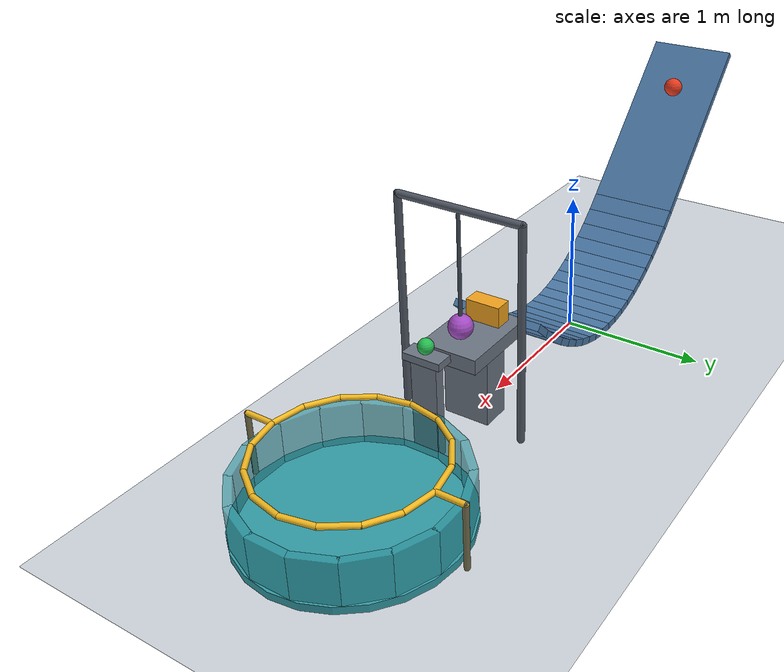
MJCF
<mujoco model="halfpipe_chain_reaction">
  <compiler angle="degree" autolimits="true"/>
  <option timestep="0.002" gravity="0 0 -9.81" integrator="implicitfast" solver="Newton" iterations="100" tolerance="1e-10"/>
  <size njmax="2000" nconmax="400"/>
  <visual>
    <headlight ambient="0.45 0.45 0.45" diffuse="0.7 0.7 0.7" specular="0.2 0.2 0.2"/>
    <rgba haze="0.85 0.9 0.95 1"/>
  </visual>

  <worldbody>
    <light name="key_light" pos="0 -3 6" dir="0 0.3 -1" directional="true"/>
    <camera name="overview" pos="4 -7 4" xyaxes="0.868 0.496 0 -0.205 0.358 0.911"/>

    <geom name="floor" type="plane" pos="0 0 0" size="8 5 0.1" friction="0.8 0.01 0.001" rgba="0.82 0.85 0.88 1"/>

    <!-- The ramp's lower endpoint is (-1, 0, 0.6).
         Ball1 starts exactly 1 m along its slope above that endpoint,
         with its center displaced one radius along the surface normal. -->
    <body name="ramp">
      <geom name="ramp_surface" type="box" pos="-1.517678 0 1.082322" euler="0 45 0" size="0.7082 0.32 0.025" friction="0.7 0.002 0.00005" condim="6" priority="1" solref="0.006 1" rgba="0.30 0.48 0.66 1"/>
    </body>

    <!-- Twenty tangent-aligned slabs approximate z = 0.1 + 0.5*x*x.
         Their upper faces form the continuous U-shaped halfpipe. -->
    <body name="halfpipe">
      <geom name="halfpipe_01" type="box" pos="-0.967219 0 0.534375" euler="0 43.531 0" size="0.069965 0.32 0.025" friction="0.7 0.002 0.00005" condim="6" priority="1" solref="0.006 1" rgba="0.30 0.48 0.66 1"/>
      <geom name="halfpipe_02" type="box" pos="-0.866192 0 0.443452" euler="0 40.365 0" size="0.066622 0.32 0.025" friction="0.7 0.002 0.00005" condim="6" priority="1" solref="0.006 1" rgba="0.30 0.48 0.66 1"/>
      <geom name="halfpipe_03" type="box" pos="-0.765000 0 0.362500" euler="0 36.870 0" size="0.063500 0.32 0.025" friction="0.7 0.002 0.00005" condim="6" priority="1" solref="0.006 1" rgba="0.30 0.48 0.66 1"/>
      <geom name="halfpipe_04" type="box" pos="-0.663625 0 0.291539" euler="0 33.024 0" size="0.060634 0.32 0.025" friction="0.7 0.002 0.00005" condim="6" priority="1" solref="0.006 1" rgba="0.30 0.48 0.66 1"/>
      <geom name="halfpipe_05" type="box" pos="-0.562048 0 0.230595" euler="0 28.811 0" size="0.058064 0.32 0.025" friction="0.7 0.002 0.00005" condim="6" priority="1" solref="0.006 1" rgba="0.30 0.48 0.66 1"/>
      <geom name="halfpipe_06" type="box" pos="-0.460259 0 0.179702" euler="0 24.228 0" size="0.055829 0.32 0.025" friction="0.7 0.002 0.00005" condim="6" priority="1" solref="0.006 1" rgba="0.30 0.48 0.66 1"/>
      <geom name="halfpipe_07" type="box" pos="-0.358259 0 0.138904" euler="0 19.290 0" size="0.053974 0.32 0.025" friction="0.7 0.002 0.00005" condim="6" priority="1" solref="0.006 1" rgba="0.30 0.48 0.66 1"/>
      <geom name="halfpipe_08" type="box" pos="-0.256063 0 0.108246" euler="0 14.036 0" size="0.052539 0.32 0.025" friction="0.7 0.002 0.00005" condim="6" priority="1" solref="0.006 1" rgba="0.30 0.48 0.66 1"/>
      <geom name="halfpipe_09" type="box" pos="-0.153709 0 0.087777" euler="0 8.531 0" size="0.051559 0.32 0.025" friction="0.7 0.002 0.00005" condim="6" priority="1" solref="0.006 1" rgba="0.30 0.48 0.66 1"/>
      <geom name="halfpipe_10" type="box" pos="-0.051248 0 0.077531" euler="0 2.862 0" size="0.051062 0.32 0.025" friction="0.7 0.002 0.00005" condim="6" priority="1" solref="0.006 1" rgba="0.30 0.48 0.66 1"/>
      <geom name="halfpipe_11" type="box" pos="0.051248 0 0.077531" euler="0 -2.862 0" size="0.051062 0.32 0.025" friction="0.7 0.002 0.00005" condim="6" priority="1" solref="0.006 1" rgba="0.30 0.48 0.66 1"/>
      <geom name="halfpipe_12" type="box" pos="0.153709 0 0.087777" euler="0 -8.531 0" size="0.051559 0.32 0.025" friction="0.7 0.002 0.00005" condim="6" priority="1" solref="0.006 1" rgba="0.30 0.48 0.66 1"/>
      <geom name="halfpipe_13" type="box" pos="0.256063 0 0.108246" euler="0 -14.036 0" size="0.052539 0.32 0.025" friction="0.7 0.002 0.00005" condim="6" priority="1" solref="0.006 1" rgba="0.30 0.48 0.66 1"/>
      <geom name="halfpipe_14" type="box" pos="0.358259 0 0.138904" euler="0 -19.290 0" size="0.053974 0.32 0.025" friction="0.7 0.002 0.00005" condim="6" priority="1" solref="0.006 1" rgba="0.30 0.48 0.66 1"/>
      <geom name="halfpipe_15" type="box" pos="0.460259 0 0.179702" euler="0 -24.228 0" size="0.055829 0.32 0.025" friction="0.7 0.002 0.00005" condim="6" priority="1" solref="0.006 1" rgba="0.30 0.48 0.66 1"/>
      <geom name="halfpipe_16" type="box" pos="0.562048 0 0.230595" euler="0 -28.811 0" size="0.058064 0.32 0.025" friction="0.7 0.002 0.00005" condim="6" priority="1" solref="0.006 1" rgba="0.30 0.48 0.66 1"/>
      <geom name="halfpipe_17" type="box" pos="0.663625 0 0.291539" euler="0 -33.024 0" size="0.060634 0.32 0.025" friction="0.7 0.002 0.00005" condim="6" priority="1" solref="0.006 1" rgba="0.30 0.48 0.66 1"/>
      <geom name="halfpipe_18" type="box" pos="0.765000 0 0.362500" euler="0 -36.870 0" size="0.063500 0.32 0.025" friction="0.7 0.002 0.00005" condim="6" priority="1" solref="0.006 1" rgba="0.30 0.48 0.66 1"/>
      <geom name="halfpipe_19" type="box" pos="0.866192 0 0.443452" euler="0 -40.365 0" size="0.066622 0.32 0.025" friction="0.7 0.002 0.00005" condim="6" priority="1" solref="0.006 1" rgba="0.30 0.48 0.66 1"/>
      <geom name="halfpipe_20" type="box" pos="0.967219 0 0.534375" euler="0 -43.531 0" size="0.069965 0.32 0.025" friction="0.7 0.002 0.00005" condim="6" priority="1" solref="0.006 1" rgba="0.30 0.48 0.66 1"/>
    </body>

    <body name="ball1" pos="-1.657609 0 1.356604">
      <freejoint name="ball1_free"/>
      <geom name="ball1_sphere" type="sphere" size="0.07" mass="0.4" friction="0.7 0.002 0.00005" condim="6" solref="0.006 1" rgba="0.92 0.23 0.12 1"/>
    </body>

    <body name="block_support">
      <geom name="block_support_deck" type="box" pos="1.2825 0 0.55" size="0.2875 0.20 0.05" friction="0.07 0.002 0.0001" priority="5" solref="0.006 1" rgba="0.43 0.47 0.52 1"/>
      <geom name="block_support_leg" type="box" pos="1.28 0 0.25" size="0.10 0.16 0.25" rgba="0.43 0.47 0.52 1"/>
    </body>

    <body name="block" pos="1.12 0 0.67">
      <freejoint name="block_free"/>
      <geom name="block_striker" type="box" size="0.06 0.12 0.07" mass="0.14" friction="0.07 0.002 0.0001" condim="4" priority="2" solref="0.006 0.2" rgba="0.96 0.65 0.12 1"/>
    </body>

    <body name="pendulum_support">
      <geom name="pendulum_support_left" type="capsule" fromto="1.42 -0.43 0.025 1.42 -0.43 1.48" size="0.025" rgba="0.32 0.35 0.40 1"/>
      <geom name="pendulum_support_right" type="capsule" fromto="1.42 0.43 0.025 1.42 0.43 1.48" size="0.025" rgba="0.32 0.35 0.40 1"/>
      <geom name="pendulum_support_axle" type="capsule" fromto="1.42 -0.43 1.48 1.42 0.43 1.48" size="0.025" contype="0" conaffinity="0" rgba="0.32 0.35 0.40 1"/>
    </body>

    <body name="pendulum" pos="1.42 0 1.48">
      <joint name="pendulum_hinge" type="hinge" axis="0 1 0" range="-75 8" damping="0.001" armature="0.00001"/>
      <geom name="pendulum_rod" type="capsule" fromto="0 0 -0.035 0 0 -0.72" size="0.012" mass="0.008" contype="0" conaffinity="0" rgba="0.25 0.29 0.34 1"/>
      <geom name="pendulum_bob" type="sphere" pos="0 0 -0.78" size="0.08" mass="0.07" friction="0.08 0.002 0.0001" priority="3" solref="0.006 0.25" rgba="0.65 0.30 0.78 1"/>
    </body>

    <!-- Ball2 remains on its small perch until the pendulum knocks it off. -->
    <body name="ball2_stand">
      <geom name="ball2_stand_top" type="box" pos="1.78 0 0.675" size="0.06 0.13 0.025" friction="0.15 0.002 0.0001" priority="5" solref="0.006 1" rgba="0.43 0.47 0.52 1"/>
      <geom name="ball2_stand_column" type="box" pos="1.78 0 0.325" size="0.035 0.09 0.325" rgba="0.43 0.47 0.52 1"/>
    </body>

    <body name="ball2" pos="1.78 0 0.75">
      <freejoint name="ball2_free"/>
      <geom name="ball2_sphere" type="sphere" size="0.05" mass="0.045" friction="0.8 0.01 0.001" condim="6" solref="0.006 1" rgba="0.15 0.75 0.32 1"/>
    </body>

    <!-- Horizontal drop hoop, assembled entirely from capsule segments. -->
    <body name="hoop" pos="2.5 0 0.44">
      <geom name="hoop_01" type="capsule" fromto="0.560000 0 0 0.517373 0.214303 0" size="0.018" priority="5" solref="0.006 1" rgba="0.96 0.73 0.12 1"/>
      <geom name="hoop_02" type="capsule" fromto="0.517373 0.214303 0 0.395980 0.395980 0" size="0.018" priority="5" solref="0.006 1" rgba="0.96 0.73 0.12 1"/>
      <geom name="hoop_03" type="capsule" fromto="0.395980 0.395980 0 0.214303 0.517373 0" size="0.018" priority="5" solref="0.006 1" rgba="0.96 0.73 0.12 1"/>
      <geom name="hoop_04" type="capsule" fromto="0.214303 0.517373 0 0 0.560000 0" size="0.018" priority="5" solref="0.006 1" rgba="0.96 0.73 0.12 1"/>
      <geom name="hoop_05" type="capsule" fromto="0 0.560000 0 -0.214303 0.517373 0" size="0.018" priority="5" solref="0.006 1" rgba="0.96 0.73 0.12 1"/>
      <geom name="hoop_06" type="capsule" fromto="-0.214303 0.517373 0 -0.395980 0.395980 0" size="0.018" priority="5" solref="0.006 1" rgba="0.96 0.73 0.12 1"/>
      <geom name="hoop_07" type="capsule" fromto="-0.395980 0.395980 0 -0.517373 0.214303 0" size="0.018" priority="5" solref="0.006 1" rgba="0.96 0.73 0.12 1"/>
      <geom name="hoop_08" type="capsule" fromto="-0.517373 0.214303 0 -0.560000 0 0" size="0.018" priority="5" solref="0.006 1" rgba="0.96 0.73 0.12 1"/>
      <geom name="hoop_09" type="capsule" fromto="-0.560000 0 0 -0.517373 -0.214303 0" size="0.018" priority="5" solref="0.006 1" rgba="0.96 0.73 0.12 1"/>
      <geom name="hoop_10" type="capsule" fromto="-0.517373 -0.214303 0 -0.395980 -0.395980 0" size="0.018" priority="5" solref="0.006 1" rgba="0.96 0.73 0.12 1"/>
      <geom name="hoop_11" type="capsule" fromto="-0.395980 -0.395980 0 -0.214303 -0.517373 0" size="0.018" priority="5" solref="0.006 1" rgba="0.96 0.73 0.12 1"/>
      <geom name="hoop_12" type="capsule" fromto="-0.214303 -0.517373 0 0 -0.560000 0" size="0.018" priority="5" solref="0.006 1" rgba="0.96 0.73 0.12 1"/>
      <geom name="hoop_13" type="capsule" fromto="0 -0.560000 0 0.214303 -0.517373 0" size="0.018" priority="5" solref="0.006 1" rgba="0.96 0.73 0.12 1"/>
      <geom name="hoop_14" type="capsule" fromto="0.214303 -0.517373 0 0.395980 -0.395980 0" size="0.018" priority="5" solref="0.006 1" rgba="0.96 0.73 0.12 1"/>
      <geom name="hoop_15" type="capsule" fromto="0.395980 -0.395980 0 0.517373 -0.214303 0" size="0.018" priority="5" solref="0.006 1" rgba="0.96 0.73 0.12 1"/>
      <geom name="hoop_16" type="capsule" fromto="0.517373 -0.214303 0 0.560000 0 0" size="0.018" priority="5" solref="0.006 1" rgba="0.96 0.73 0.12 1"/>
      <geom name="hoop_left_post" type="capsule" fromto="0 -0.75 -0.422 0 -0.75 0" size="0.018" rgba="0.45 0.43 0.30 1"/>
      <geom name="hoop_right_post" type="capsule" fromto="0 0.75 -0.422 0 0.75 0" size="0.018" rgba="0.45 0.43 0.30 1"/>
      <geom name="hoop_left_brace" type="capsule" fromto="0 -0.75 0 0 -0.56 0" size="0.018" rgba="0.96 0.73 0.12 1"/>
      <geom name="hoop_right_brace" type="capsule" fromto="0 0.56 0 0 0.75 0" size="0.018" rgba="0.96 0.73 0.12 1"/>
    </body>

    <!-- A closed bottom and overlapping polygonal walls form an open cup.
         Dissipative six-dimensional contacts arrest translation and spin. -->
    <body name="cup" pos="2.5 0 0">
      <geom name="cup_bottom" type="cylinder" pos="0 0 0.025" size="0.70 0.025" friction="1.2 0.02 0.01" condim="6" priority="5" solref="0.006 1" rgba="0.20 0.62 0.66 1"/>
      <geom name="cup_wall_01" type="box" pos="0.655000 0 0.19" euler="0 0 0" size="0.025 0.135 0.14" friction="1.2 0.02 0.01" condim="6" priority="5" solref="0.006 1" rgba="0.20 0.62 0.66 0.65"/>
      <geom name="cup_wall_02" type="box" pos="0.605141 0.250658 0.19" euler="0 0 22.5" size="0.025 0.135 0.14" friction="1.2 0.02 0.01" condim="6" priority="5" solref="0.006 1" rgba="0.20 0.62 0.66 0.65"/>
      <geom name="cup_wall_03" type="box" pos="0.463155 0.463155 0.19" euler="0 0 45" size="0.025 0.135 0.14" friction="1.2 0.02 0.01" condim="6" priority="5" solref="0.006 1" rgba="0.20 0.62 0.66 0.65"/>
      <geom name="cup_wall_04" type="box" pos="0.250658 0.605141 0.19" euler="0 0 67.5" size="0.025 0.135 0.14" friction="1.2 0.02 0.01" condim="6" priority="5" solref="0.006 1" rgba="0.20 0.62 0.66 0.65"/>
      <geom name="cup_wall_05" type="box" pos="0 0.655000 0.19" euler="0 0 90" size="0.025 0.135 0.14" friction="1.2 0.02 0.01" condim="6" priority="5" solref="0.006 1" rgba="0.20 0.62 0.66 0.65"/>
      <geom name="cup_wall_06" type="box" pos="-0.250658 0.605141 0.19" euler="0 0 112.5" size="0.025 0.135 0.14" friction="1.2 0.02 0.01" condim="6" priority="5" solref="0.006 1" rgba="0.20 0.62 0.66 0.65"/>
      <geom name="cup_wall_07" type="box" pos="-0.463155 0.463155 0.19" euler="0 0 135" size="0.025 0.135 0.14" friction="1.2 0.02 0.01" condim="6" priority="5" solref="0.006 1" rgba="0.20 0.62 0.66 0.65"/>
      <geom name="cup_wall_08" type="box" pos="-0.605141 0.250658 0.19" euler="0 0 157.5" size="0.025 0.135 0.14" friction="1.2 0.02 0.01" condim="6" priority="5" solref="0.006 1" rgba="0.20 0.62 0.66 0.65"/>
      <geom name="cup_wall_09" type="box" pos="-0.655000 0 0.19" euler="0 0 180" size="0.025 0.135 0.14" friction="1.2 0.02 0.01" condim="6" priority="5" solref="0.006 1" rgba="0.20 0.62 0.66 0.65"/>
      <geom name="cup_wall_10" type="box" pos="-0.605141 -0.250658 0.19" euler="0 0 202.5" size="0.025 0.135 0.14" friction="1.2 0.02 0.01" condim="6" priority="5" solref="0.006 1" rgba="0.20 0.62 0.66 0.65"/>
      <geom name="cup_wall_11" type="box" pos="-0.463155 -0.463155 0.19" euler="0 0 225" size="0.025 0.135 0.14" friction="1.2 0.02 0.01" condim="6" priority="5" solref="0.006 1" rgba="0.20 0.62 0.66 0.65"/>
      <geom name="cup_wall_12" type="box" pos="-0.250658 -0.605141 0.19" euler="0 0 247.5" size="0.025 0.135 0.14" friction="1.2 0.02 0.01" condim="6" priority="5" solref="0.006 1" rgba="0.20 0.62 0.66 0.65"/>
      <geom name="cup_wall_13" type="box" pos="0 -0.655000 0.19" euler="0 0 270" size="0.025 0.135 0.14" friction="1.2 0.02 0.01" condim="6" priority="5" solref="0.006 1" rgba="0.20 0.62 0.66 0.65"/>
      <geom name="cup_wall_14" type="box" pos="0.250658 -0.605141 0.19" euler="0 0 292.5" size="0.025 0.135 0.14" friction="1.2 0.02 0.01" condim="6" priority="5" solref="0.006 1" rgba="0.20 0.62 0.66 0.65"/>
      <geom name="cup_wall_15" type="box" pos="0.463155 -0.463155 0.19" euler="0 0 315" size="0.025 0.135 0.14" friction="1.2 0.02 0.01" condim="6" priority="5" solref="0.006 1" rgba="0.20 0.62 0.66 0.65"/>
      <geom name="cup_wall_16" type="box" pos="0.605141 -0.250658 0.19" euler="0 0 337.5" size="0.025 0.135 0.14" friction="1.2 0.02 0.01" condim="6" priority="5" solref="0.006 1" rgba="0.20 0.62 0.66 0.65"/>
    </body>
  </worldbody>

  <keyframe>
    <key name="start" time="0" qpos="-1.657609 0 1.356604 1 0 0 0 1.12 0 0.67 1 0 0 0 0 1.78 0 0.75 1 0 0 0"/>
  </keyframe>
</mujoco>
